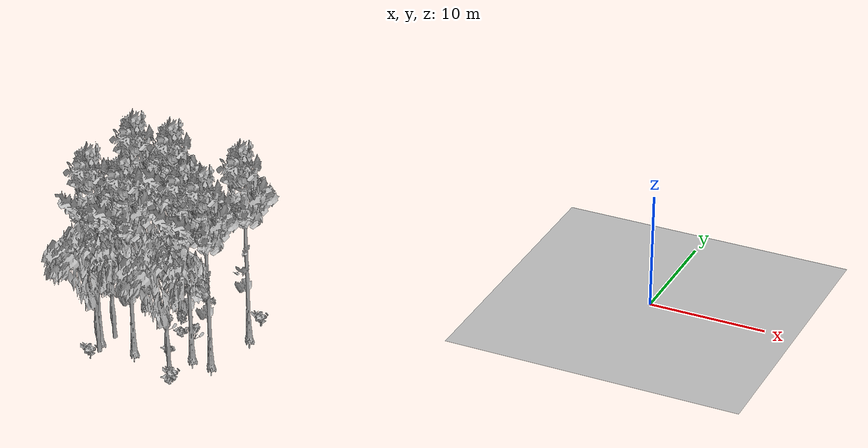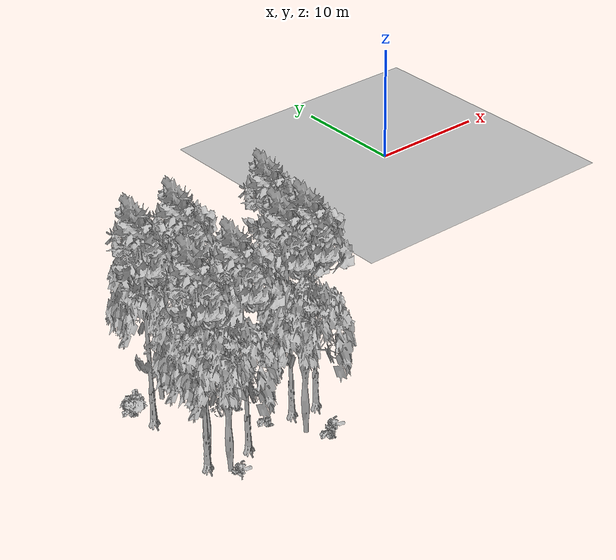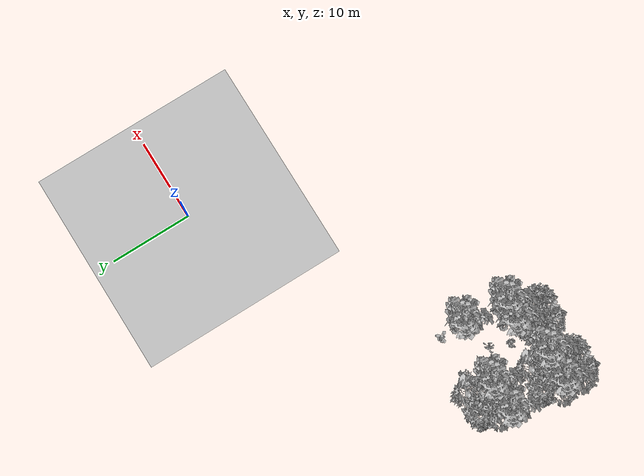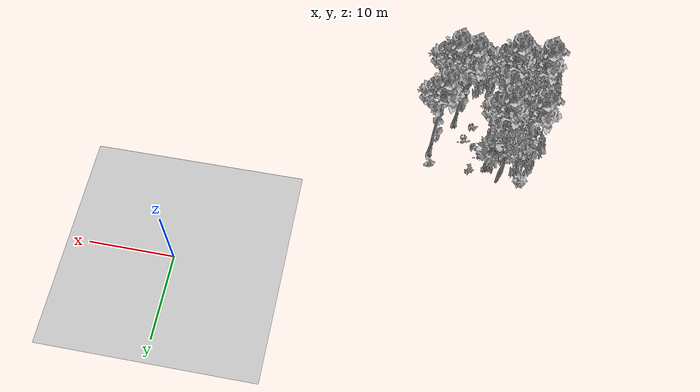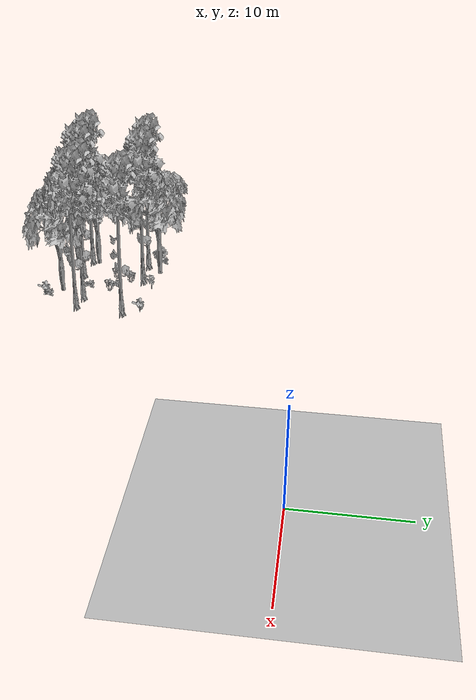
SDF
<sdf version="1.7">
 <world name="default">
  <model name="ground_plane">
   <static>1</static>
   <link name="link">
    <collision name="collision">
     <pose>-50 0 0 0 -0 0</pose>
     <geometry><plane><normal>0 0 1</normal><size>80 80</size></plane></geometry>
     <surface><contact><ode><min_depth>0.01</min_depth><max_vel>0</max_vel></ode></contact></surface>
    </collision>
    <visual name="grass">
     <cast_shadows>0</cast_shadows>
     <geometry>
      <mesh>
       <scale>0.46714285714285714 0.46714285714285714 0.1</scale>
       <uri>file://grass_plane/meshes/grass_plane.dae</uri>
      </mesh>
     </geometry>
    </visual>
   </link>
  </model>
  <model name="Tree 15">
   <static>1</static>
   <pose>-30.434588674883834 -26.13237675348018 0 1.57079 -0 0</pose>
   <link name="link">
    <collision name="collision">
     <geometry><mesh><scale>3.5 5 3.5</scale><uri>model://tree_2/meshes/tree_2.obj</uri></mesh></geometry>
    </collision>
    <visual name="visual">
     <geometry><mesh><scale>3.5 5 3.5</scale><uri>model://tree_2/meshes/tree_2.obj</uri></mesh></geometry>
    </visual>
   </link>
  </model>
  <model name="Tree 138">
   <static>1</static>
   <pose>-27.744770455921994 -24.020423797807116 0 1.57079 -0 0</pose>
   <link name="link">
    <collision name="collision">
     <geometry><mesh><scale>3.5 5 3.5</scale><uri>model://tree_9/meshes/tree_9.obj</uri></mesh></geometry>
    </collision>
    <visual name="visual">
     <geometry><mesh><scale>3.5 5 3.5</scale><uri>model://tree_9/meshes/tree_9.obj</uri></mesh></geometry>
    </visual>
   </link>
  </model>
  <model name="Tree 207">
   <static>1</static>
   <pose>-36.91729190808898 -23.768842333302224 0 1.57079 -0 0</pose>
   <link name="link">
    <collision name="collision">
     <geometry><mesh><scale>3.5 5 3.5</scale><uri>model://tree_2/meshes/tree_2.obj</uri></mesh></geometry>
    </collision>
    <visual name="visual">
     <geometry><mesh><scale>3.5 5 3.5</scale><uri>model://tree_2/meshes/tree_2.obj</uri></mesh></geometry>
    </visual>
   </link>
  </model>
  <model name="Tree 288">
   <static>1</static>
   <pose>-33.9490442887851 -18.147770058726618 0 1.57079 -0 0</pose>
   <link name="link">
    <collision name="collision">
     <geometry><mesh><scale>3.5 5 3.5</scale><uri>model://tree_9/meshes/tree_9.obj</uri></mesh></geometry>
    </collision>
    <visual name="visual">
     <geometry><mesh><scale>3.5 5 3.5</scale><uri>model://tree_9/meshes/tree_9.obj</uri></mesh></geometry>
    </visual>
   </link>
  </model>
  <model name="Tree 368">
   <static>1</static>
   <pose>-27.093221634662267 -18.9920135015128 0 1.57079 -0 0</pose>
   <link name="link">
    <collision name="collision">
     <geometry><mesh><scale>3.5 5 3.5</scale><uri>model://tree_9/meshes/tree_9.obj</uri></mesh></geometry>
    </collision>
    <visual name="visual">
     <geometry><mesh><scale>3.5 5 3.5</scale><uri>model://tree_9/meshes/tree_9.obj</uri></mesh></geometry>
    </visual>
   </link>
  </model>
  <model name="Tree 480">
   <static>1</static>
   <pose>-37.59430066844313 -24.673927492400516 0 1.57079 -0 0</pose>
   <link name="link">
    <collision name="collision">
     <geometry><mesh><scale>3.5 5 3.5</scale><uri>model://tree_9/meshes/tree_9.obj</uri></mesh></geometry>
    </collision>
    <visual name="visual">
     <geometry><mesh><scale>3.5 5 3.5</scale><uri>model://tree_9/meshes/tree_9.obj</uri></mesh></geometry>
    </visual>
   </link>
  </model>
  <model name="Tree 485">
   <static>1</static>
   <pose>-36.89484187229152 -26.179396815088705 0 1.57079 -0 0</pose>
   <link name="link">
    <collision name="collision">
     <geometry><mesh><scale>3.5 5 3.5</scale><uri>model://tree_2/meshes/tree_2.obj</uri></mesh></geometry>
    </collision>
    <visual name="visual">
     <geometry><mesh><scale>3.5 5 3.5</scale><uri>model://tree_2/meshes/tree_2.obj</uri></mesh></geometry>
    </visual>
   </link>
  </model>
  <model name="Tree 502">
   <static>1</static>
   <pose>-37.35061752748229 -18.224128897333323 0 1.57079 -0 0</pose>
   <link name="link">
    <collision name="collision">
     <geometry><mesh><scale>3.5 5 3.5</scale><uri>model://tree_9/meshes/tree_9.obj</uri></mesh></geometry>
    </collision>
    <visual name="visual">
     <geometry><mesh><scale>3.5 5 3.5</scale><uri>model://tree_9/meshes/tree_9.obj</uri></mesh></geometry>
    </visual>
   </link>
  </model>
  <model name="Tree 524">
   <static>1</static>
   <pose>-29.647031389739652 -23.721395760725727 0 1.57079 -0 0</pose>
   <link name="link">
    <collision name="collision">
     <geometry><mesh><scale>3.5 5 3.5</scale><uri>model://tree_9/meshes/tree_9.obj</uri></mesh></geometry>
    </collision>
    <visual name="visual">
     <geometry><mesh><scale>3.5 5 3.5</scale><uri>model://tree_9/meshes/tree_9.obj</uri></mesh></geometry>
    </visual>
   </link>
  </model>
  <model name="Tree 550">
   <static>1</static>
   <pose>-35.5536459554279 -16.562763713012714 0 1.57079 -0 0</pose>
   <link name="link">
    <collision name="collision">
     <geometry><mesh><scale>3.5 5 3.5</scale><uri>model://tree_2/meshes/tree_2.obj</uri></mesh></geometry>
    </collision>
    <visual name="visual">
     <geometry><mesh><scale>3.5 5 3.5</scale><uri>model://tree_2/meshes/tree_2.obj</uri></mesh></geometry>
    </visual>
   </link>
  </model>
  <model name="Tree 635">
   <static>1</static>
   <pose>-34.329877970817364 -24.87845065471167 0 1.57079 -0 0</pose>
   <link name="link">
    <collision name="collision">
     <geometry><mesh><scale>3.5 5 3.5</scale><uri>model://tree_9/meshes/tree_9.obj</uri></mesh></geometry>
    </collision>
    <visual name="visual">
     <geometry><mesh><scale>3.5 5 3.5</scale><uri>model://tree_9/meshes/tree_9.obj</uri></mesh></geometry>
    </visual>
   </link>
  </model>
  <model name="Bush 29">
   <static>1</static>
   <pose>-27.078707708617173 -17.079672124631546 0 1.57079 -0 0</pose>
   <link name="link">
    <collision name="collision">
     <geometry><mesh><scale>2 2 2</scale><uri>model://bush_0/meshes/bush_0.obj</uri></mesh></geometry>
     <surface><contact><collide_without_contact>false</collide_without_contact></contact></surface>
    </collision>
    <visual name="visual">
     <geometry><mesh><scale>2 2 2</scale><uri>model://bush_0/meshes/bush_0.obj</uri></mesh></geometry>
    </visual>
   </link>
  </model>
  <model name="Bush 94">
   <static>1</static>
   <pose>-32.4356724746258 -20.822054550884445 0 1.57079 -0 0</pose>
   <link name="link">
    <collision name="collision">
     <geometry><mesh><scale>2 2 2</scale><uri>model://bush_2/meshes/bush_2.obj</uri></mesh></geometry>
     <surface><contact><collide_without_contact>false</collide_without_contact></contact></surface>
    </collision>
    <visual name="visual">
     <geometry><mesh><scale>2 2 2</scale><uri>model://bush_2/meshes/bush_2.obj</uri></mesh></geometry>
    </visual>
   </link>
  </model>
  <model name="Bush 96">
   <static>1</static>
   <pose>-29.13111281696147 -27.6716840996107 0 1.57079 -0 0</pose>
   <link name="link">
    <collision name="collision">
     <geometry><mesh><scale>2 2 2</scale><uri>model://bush_0/meshes/bush_0.obj</uri></mesh></geometry>
     <surface><contact><collide_without_contact>false</collide_without_contact></contact></surface>
    </collision>
    <visual name="visual">
     <geometry><mesh><scale>2 2 2</scale><uri>model://bush_0/meshes/bush_0.obj</uri></mesh></geometry>
    </visual>
   </link>
  </model>
  <model name="Bush 173">
   <static>1</static>
   <pose>-36.858640577343444 -27.436987498862795 0 1.57079 -0 0</pose>
   <link name="link">
    <collision name="collision">
     <geometry><mesh><scale>2 2 2</scale><uri>model://bush_0/meshes/bush_0.obj</uri></mesh></geometry>
     <surface><contact><collide_without_contact>false</collide_without_contact></contact></surface>
    </collision>
    <visual name="visual">
     <geometry><mesh><scale>2 2 2</scale><uri>model://bush_0/meshes/bush_0.obj</uri></mesh></geometry>
    </visual>
   </link>
  </model>
  <model name="Bush 227">
   <static>1</static>
   <pose>-31.95260239990788 -23.629966059722367 0 1.57079 -0 0</pose>
   <link name="link">
    <collision name="collision">
     <geometry><mesh><scale>2 2 2</scale><uri>model://bush_2/meshes/bush_2.obj</uri></mesh></geometry>
     <surface><contact><collide_without_contact>false</collide_without_contact></contact></surface>
    </collision>
    <visual name="visual">
     <geometry><mesh><scale>2 2 2</scale><uri>model://bush_2/meshes/bush_2.obj</uri></mesh></geometry>
    </visual>
   </link>
  </model>
  <model name="Bush 250">
   <static>1</static>
   <pose>-30.985056124966412 -21.215226906299975 0 1.57079 -0 0</pose>
   <link name="link">
    <collision name="collision">
     <geometry><mesh><scale>2 2 2</scale><uri>model://bush_4/meshes/bush_4.obj</uri></mesh></geometry>
     <surface><contact><collide_without_contact>false</collide_without_contact></contact></surface>
    </collision>
    <visual name="visual">
     <geometry><mesh><scale>2 2 2</scale><uri>model://bush_4/meshes/bush_4.obj</uri></mesh></geometry>
    </visual>
   </link>
  </model>
  <model name="Bush 292">
   <static>1</static>
   <pose>-38.258786822200804 -16.66873412685029 0 1.57079 -0 0</pose>
   <link name="link">
    <collision name="collision">
     <geometry><mesh><scale>2 2 2</scale><uri>model://bush_2/meshes/bush_2.obj</uri></mesh></geometry>
     <surface><contact><collide_without_contact>false</collide_without_contact></contact></surface>
    </collision>
    <visual name="visual">
     <geometry><mesh><scale>2 2 2</scale><uri>model://bush_2/meshes/bush_2.obj</uri></mesh></geometry>
    </visual>
   </link>
  </model>
  <model name="Bush 326">
   <static>1</static>
   <pose>-31.965187869639713 -16.81082990129326 0 1.57079 -0 0</pose>
   <link name="link">
    <collision name="collision">
     <geometry><mesh><scale>2 2 2</scale><uri>model://bush_5/meshes/bush_5.obj</uri></mesh></geometry>
     <surface><contact><collide_without_contact>false</collide_without_contact></contact></surface>
    </collision>
    <visual name="visual">
     <geometry><mesh><scale>2 2 2</scale><uri>model://bush_5/meshes/bush_5.obj</uri></mesh></geometry>
    </visual>
   </link>
  </model>
  <model name="Bush 352">
   <static>1</static>
   <pose>-29.61844644329596 -27.505497550807007 0 1.57079 -0 0</pose>
   <link name="link">
    <collision name="collision">
     <geometry><mesh><scale>2 2 2</scale><uri>model://bush_2/meshes/bush_2.obj</uri></mesh></geometry>
     <surface><contact><collide_without_contact>false</collide_without_contact></contact></surface>
    </collision>
    <visual name="visual">
     <geometry><mesh><scale>2 2 2</scale><uri>model://bush_2/meshes/bush_2.obj</uri></mesh></geometry>
    </visual>
   </link>
  </model>
  <model name="Bush 403">
   <static>1</static>
   <pose>-38.05422241499461 -17.121708543332996 0 1.57079 -0 0</pose>
   <link name="link">
    <collision name="collision">
     <geometry><mesh><scale>2 2 2</scale><uri>model://bush_1/meshes/bush_1.obj</uri></mesh></geometry>
     <surface><contact><collide_without_contact>false</collide_without_contact></contact></surface>
    </collision>
    <visual name="visual">
     <geometry><mesh><scale>2 2 2</scale><uri>model://bush_1/meshes/bush_1.obj</uri></mesh></geometry>
    </visual>
   </link>
  </model>
  <model name="Bush 426">
   <static>1</static>
   <pose>-33.65302607368324 -20.99065008533539 0 1.57079 -0 0</pose>
   <link name="link">
    <collision name="collision">
     <geometry><mesh><scale>2 2 2</scale><uri>model://bush_4/meshes/bush_4.obj</uri></mesh></geometry>
     <surface><contact><collide_without_contact>false</collide_without_contact></contact></surface>
    </collision>
    <visual name="visual">
     <geometry><mesh><scale>2 2 2</scale><uri>model://bush_4/meshes/bush_4.obj</uri></mesh></geometry>
    </visual>
   </link>
  </model>
  <model name="Bush 637">
   <static>1</static>
   <pose>-33.08249914124248 -19.363747601695582 0 1.57079 -0 0</pose>
   <link name="link">
    <collision name="collision">
     <geometry><mesh><scale>2 2 2</scale><uri>model://bush_4/meshes/bush_4.obj</uri></mesh></geometry>
     <surface><contact><collide_without_contact>false</collide_without_contact></contact></surface>
    </collision>
    <visual name="visual">
     <geometry><mesh><scale>2 2 2</scale><uri>model://bush_4/meshes/bush_4.obj</uri></mesh></geometry>
    </visual>
   </link>
  </model>
 </world>
</sdf>
